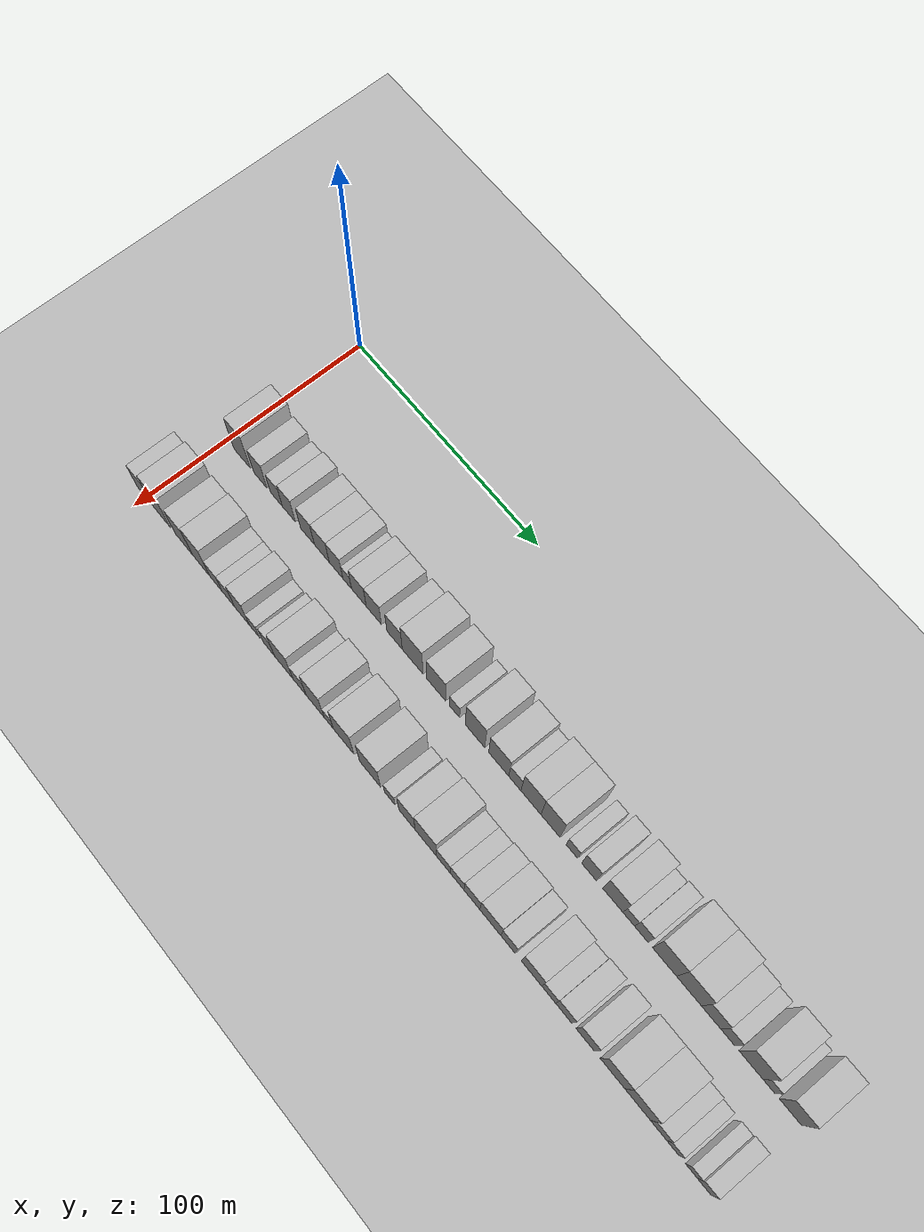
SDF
<sdf version="1.6">
 <world name="default">
  <include><name>ground_plane_1</name><uri>model://HANNAS_ground_plane</uri></include>
  <include>
   <name>ground_plane_2</name>
   <uri>model://HANNAS_ground_plane</uri>
   <pose>100 0 0  0 0 0</pose>
  </include>
  <model name="building_31">
   <static>1</static>
   <pose>50.0000 9.4016 0 0.000000 0.000000 0.000000</pose>
   <link name="link">
    <pose>0 0 12.00 0 0 0</pose>
    <collision name="collision"><geometry><box><size>20.0000 9.6106 24.0000</size></box></geometry></collision>
    <visual name="visual">
     <cast_shadows>0</cast_shadows>
     <geometry><box><size>20.0000 9.6106 24.0000</size></box></geometry>
     <material>
      <script>
       <uri>model://HANNAS_wall/materials/scripts</uri>
       <uri>model://HANNAS_wall/materials/textures</uri>
       <name>vrc/HANNAS_wall</name>
      </script>
     </material>
    </visual>
   </link>
  </model>
  <model name="building_32">
   <static>1</static>
   <pose>50.0000 20.1189 0 0.000000 0.000000 0.000000</pose>
   <link name="link">
    <pose>0 0 9.00 0 0 0</pose>
    <collision name="collision"><geometry><box><size>20.0000 7.8241 18.0000</size></box></geometry></collision>
    <visual name="visual">
     <cast_shadows>0</cast_shadows>
     <geometry><box><size>20.0000 7.8241 18.0000</size></box></geometry>
     <material>
      <script>
       <uri>model://HANNAS_wall/materials/scripts</uri>
       <uri>model://HANNAS_wall/materials/textures</uri>
       <name>vrc/HANNAS_wall</name>
      </script>
     </material>
    </visual>
   </link>
  </model>
  <model name="building_33">
   <static>1</static>
   <pose>50.0000 29.5173 0 0.000000 0.000000 0.000000</pose>
   <link name="link">
    <pose>0 0 7.50 0 0 0</pose>
    <collision name="collision"><geometry><box><size>20.0000 6.9727 15.0000</size></box></geometry></collision>
    <visual name="visual">
     <cast_shadows>0</cast_shadows>
     <geometry><box><size>20.0000 6.9727 15.0000</size></box></geometry>
     <material>
      <script>
       <uri>model://HANNAS_wall/materials/scripts</uri>
       <uri>model://HANNAS_wall/materials/textures</uri>
       <name>vrc/HANNAS_wall</name>
      </script>
     </material>
    </visual>
   </link>
  </model>
  <model name="building_34">
   <static>1</static>
   <pose>50.0000 36.7417 0 0.000000 0.000000 0.000000</pose>
   <link name="link">
    <pose>0 0 9.00 0 0 0</pose>
    <collision name="collision"><geometry><box><size>20.0000 7.4761 18.0000</size></box></geometry></collision>
    <visual name="visual">
     <cast_shadows>0</cast_shadows>
     <geometry><box><size>20.0000 7.4761 18.0000</size></box></geometry>
     <material>
      <script>
       <uri>model://HANNAS_wall/materials/scripts</uri>
       <uri>model://HANNAS_wall/materials/textures</uri>
       <name>vrc/HANNAS_wall</name>
      </script>
     </material>
    </visual>
   </link>
  </model>
  <model name="building_35">
   <static>1</static>
   <pose>50.0000 47.4187 0 0.000000 0.000000 0.000000</pose>
   <link name="link">
    <pose>0 0 9.00 0 0 0</pose>
    <collision name="collision"><geometry><box><size>20.0000 7.8779 18.0000</size></box></geometry></collision>
    <visual name="visual">
     <cast_shadows>0</cast_shadows>
     <geometry><box><size>20.0000 7.8779 18.0000</size></box></geometry>
     <material>
      <script>
       <uri>model://HANNAS_wall/materials/scripts</uri>
       <uri>model://HANNAS_wall/materials/textures</uri>
       <name>vrc/HANNAS_wall</name>
      </script>
     </material>
    </visual>
   </link>
  </model>
  <model name="building_36">
   <static>1</static>
   <pose>50.0000 55.5875 0 0.000000 0.000000 0.000000</pose>
   <link name="link">
    <pose>0 0 9.00 0 0 0</pose>
    <collision name="collision"><geometry><box><size>20.0000 8.4597 18.0000</size></box></geometry></collision>
    <visual name="visual">
     <cast_shadows>0</cast_shadows>
     <geometry><box><size>20.0000 8.4597 18.0000</size></box></geometry>
     <material>
      <script>
       <uri>model://HANNAS_wall/materials/scripts</uri>
       <uri>model://HANNAS_wall/materials/textures</uri>
       <name>vrc/HANNAS_wall</name>
      </script>
     </material>
    </visual>
   </link>
  </model>
  <model name="building_37">
   <static>1</static>
   <pose>50.0000 63.6244 0 0.000000 0.000000 0.000000</pose>
   <link name="link">
    <pose>0 0 9.00 0 0 0</pose>
    <collision name="collision"><geometry><box><size>20.0000 7.6142 18.0000</size></box></geometry></collision>
    <visual name="visual">
     <cast_shadows>0</cast_shadows>
     <geometry><box><size>20.0000 7.6142 18.0000</size></box></geometry>
     <material>
      <script>
       <uri>model://HANNAS_wall/materials/scripts</uri>
       <uri>model://HANNAS_wall/materials/textures</uri>
       <name>vrc/HANNAS_wall</name>
      </script>
     </material>
    </visual>
   </link>
  </model>
  <model name="building_38">
   <static>1</static>
   <pose>50.0000 69.8518 0 0.000000 0.000000 0.000000</pose>
   <link name="link">
    <pose>0 0 6.00 0 0 0</pose>
    <collision name="collision"><geometry><box><size>20.0000 4.8407 12.0000</size></box></geometry></collision>
    <visual name="visual">
     <cast_shadows>0</cast_shadows>
     <geometry><box><size>20.0000 4.8407 12.0000</size></box></geometry>
     <material>
      <script>
       <uri>model://HANNAS_wall/materials/scripts</uri>
       <uri>model://HANNAS_wall/materials/textures</uri>
       <name>vrc/HANNAS_wall</name>
      </script>
     </material>
    </visual>
   </link>
  </model>
  <model name="building_39">
   <static>1</static>
   <pose>50.0000 76.3494 0 0.000000 0.000000 0.000000</pose>
   <link name="link">
    <pose>0 0 9.00 0 0 0</pose>
    <collision name="collision"><geometry><box><size>20.0000 8.1544 18.0000</size></box></geometry></collision>
    <visual name="visual">
     <cast_shadows>0</cast_shadows>
     <geometry><box><size>20.0000 8.1544 18.0000</size></box></geometry>
     <material>
      <script>
       <uri>model://HANNAS_wall/materials/scripts</uri>
       <uri>model://HANNAS_wall/materials/textures</uri>
       <name>vrc/HANNAS_wall</name>
      </script>
     </material>
    </visual>
   </link>
  </model>
  <model name="building_40">
   <static>1</static>
   <pose>50.0000 84.6079 0 0.000000 0.000000 0.000000</pose>
   <link name="link">
    <pose>0 0 9.00 0 0 0</pose>
    <collision name="collision"><geometry><box><size>20.0000 8.3627 18.0000</size></box></geometry></collision>
    <visual name="visual">
     <cast_shadows>0</cast_shadows>
     <geometry><box><size>20.0000 8.3627 18.0000</size></box></geometry>
     <material>
      <script>
       <uri>model://HANNAS_wall/materials/scripts</uri>
       <uri>model://HANNAS_wall/materials/textures</uri>
       <name>vrc/HANNAS_wall</name>
      </script>
     </material>
    </visual>
   </link>
  </model>
  <model name="building_41">
   <static>1</static>
   <pose>50.0000 95.9623 0 0.000000 0.000000 0.000000</pose>
   <link name="link">
    <pose>0 0 9.00 0 0 0</pose>
    <collision name="collision"><geometry><box><size>20.0000 8.3461 18.0000</size></box></geometry></collision>
    <visual name="visual">
     <cast_shadows>0</cast_shadows>
     <geometry><box><size>20.0000 8.3461 18.0000</size></box></geometry>
     <material>
      <script>
       <uri>model://HANNAS_wall/materials/scripts</uri>
       <uri>model://HANNAS_wall/materials/textures</uri>
       <name>vrc/HANNAS_wall</name>
      </script>
     </material>
    </visual>
   </link>
  </model>
  <model name="building_42">
   <static>1</static>
   <pose>50.0000 105.7547 0 0.000000 0.000000 0.000000</pose>
   <link name="link">
    <pose>0 0 12.00 0 0 0</pose>
    <collision name="collision"><geometry><box><size>20.0000 11.2388 24.0000</size></box></geometry></collision>
    <visual name="visual">
     <cast_shadows>0</cast_shadows>
     <geometry><box><size>20.0000 11.2388 24.0000</size></box></geometry>
     <material>
      <script>
       <uri>model://HANNAS_wall/materials/scripts</uri>
       <uri>model://HANNAS_wall/materials/textures</uri>
       <name>vrc/HANNAS_wall</name>
      </script>
     </material>
    </visual>
   </link>
  </model>
  <model name="building_43">
   <static>1</static>
   <pose>50.0000 118.3998 0 0.000000 0.000000 0.000000</pose>
   <link name="link">
    <pose>0 0 10.50 0 0 0</pose>
    <collision name="collision"><geometry><box><size>20.0000 10.0513 21.0000</size></box></geometry></collision>
    <visual name="visual">
     <cast_shadows>0</cast_shadows>
     <geometry><box><size>20.0000 10.0513 21.0000</size></box></geometry>
     <material>
      <script>
       <uri>model://HANNAS_wall/materials/scripts</uri>
       <uri>model://HANNAS_wall/materials/textures</uri>
       <name>vrc/HANNAS_wall</name>
      </script>
     </material>
    </visual>
   </link>
  </model>
  <model name="building_44">
   <static>1</static>
   <pose>50.0000 128.1197 0 0.000000 0.000000 0.000000</pose>
   <link name="link">
    <pose>0 0 6.00 0 0 0</pose>
    <collision name="collision"><geometry><box><size>20.0000 5.3886 12.0000</size></box></geometry></collision>
    <visual name="visual">
     <cast_shadows>0</cast_shadows>
     <geometry><box><size>20.0000 5.3886 12.0000</size></box></geometry>
     <material>
      <script>
       <uri>model://HANNAS_wall/materials/scripts</uri>
       <uri>model://HANNAS_wall/materials/textures</uri>
       <name>vrc/HANNAS_wall</name>
      </script>
     </material>
    </visual>
   </link>
  </model>
  <model name="building_45">
   <static>1</static>
   <pose>50.0000 138.9003 0 0.000000 0.000000 0.000000</pose>
   <link name="link">
    <pose>0 0 12.00 0 0 0</pose>
    <collision name="collision"><geometry><box><size>20.0000 10.1726 24.0000</size></box></geometry></collision>
    <visual name="visual">
     <cast_shadows>0</cast_shadows>
     <geometry><box><size>20.0000 10.1726 24.0000</size></box></geometry>
     <material>
      <script>
       <uri>model://HANNAS_wall/materials/scripts</uri>
       <uri>model://HANNAS_wall/materials/textures</uri>
       <name>vrc/HANNAS_wall</name>
      </script>
     </material>
    </visual>
   </link>
  </model>
  <model name="building_46">
   <static>1</static>
   <pose>50.0000 151.1847 0 0.000000 0.000000 0.000000</pose>
   <link name="link">
    <pose>0 0 10.50 0 0 0</pose>
    <collision name="collision"><geometry><box><size>20.0000 10.3962 21.0000</size></box></geometry></collision>
    <visual name="visual">
     <cast_shadows>0</cast_shadows>
     <geometry><box><size>20.0000 10.3962 21.0000</size></box></geometry>
     <material>
      <script>
       <uri>model://HANNAS_wall/materials/scripts</uri>
       <uri>model://HANNAS_wall/materials/textures</uri>
       <name>vrc/HANNAS_wall</name>
      </script>
     </material>
    </visual>
   </link>
  </model>
  <model name="building_47">
   <static>1</static>
   <pose>50.0000 159.4917 0 0.000000 0.000000 0.000000</pose>
   <link name="link">
    <pose>0 0 7.50 0 0 0</pose>
    <collision name="collision"><geometry><box><size>20.0000 6.2178 15.0000</size></box></geometry></collision>
    <visual name="visual">
     <cast_shadows>0</cast_shadows>
     <geometry><box><size>20.0000 6.2178 15.0000</size></box></geometry>
     <material>
      <script>
       <uri>model://HANNAS_wall/materials/scripts</uri>
       <uri>model://HANNAS_wall/materials/textures</uri>
       <name>vrc/HANNAS_wall</name>
      </script>
     </material>
    </visual>
   </link>
  </model>
  <model name="building_48">
   <static>1</static>
   <pose>50.0000 167.7055 0 0.000000 0.000000 0.000000</pose>
   <link name="link">
    <pose>0 0 12.00 0 0 0</pose>
    <collision name="collision"><geometry><box><size>20.0000 10.2099 24.0000</size></box></geometry></collision>
    <visual name="visual">
     <cast_shadows>0</cast_shadows>
     <geometry><box><size>20.0000 10.2099 24.0000</size></box></geometry>
     <material>
      <script>
       <uri>model://HANNAS_wall/materials/scripts</uri>
       <uri>model://HANNAS_wall/materials/textures</uri>
       <name>vrc/HANNAS_wall</name>
      </script>
     </material>
    </visual>
   </link>
  </model>
  <model name="building_49">
   <static>1</static>
   <pose>50.0000 177.6458 0 0.000000 0.000000 0.000000</pose>
   <link name="link">
    <pose>0 0 12.00 0 0 0</pose>
    <collision name="collision"><geometry><box><size>20.0000 9.6705 24.0000</size></box></geometry></collision>
    <visual name="visual">
     <cast_shadows>0</cast_shadows>
     <geometry><box><size>20.0000 9.6705 24.0000</size></box></geometry>
     <material>
      <script>
       <uri>model://HANNAS_wall/materials/scripts</uri>
       <uri>model://HANNAS_wall/materials/textures</uri>
       <name>vrc/HANNAS_wall</name>
      </script>
     </material>
    </visual>
   </link>
  </model>
  <model name="building_50">
   <static>1</static>
   <pose>50.0000 188.3380 0 0.000000 0.000000 0.000000</pose>
   <link name="link">
    <pose>0 0 6.00 0 0 0</pose>
    <collision name="collision"><geometry><box><size>20.0000 5.7140 12.0000</size></box></geometry></collision>
    <visual name="visual">
     <cast_shadows>0</cast_shadows>
     <geometry><box><size>20.0000 5.7140 12.0000</size></box></geometry>
     <material>
      <script>
       <uri>model://HANNAS_wall/materials/scripts</uri>
       <uri>model://HANNAS_wall/materials/textures</uri>
       <name>vrc/HANNAS_wall</name>
      </script>
     </material>
    </visual>
   </link>
  </model>
  <model name="building_51">
   <static>1</static>
   <pose>50.0000 196.8717 0 0.000000 0.000000 0.000000</pose>
   <link name="link">
    <pose>0 0 9.00 0 0 0</pose>
    <collision name="collision"><geometry><box><size>20.0000 7.3533 18.0000</size></box></geometry></collision>
    <visual name="visual">
     <cast_shadows>0</cast_shadows>
     <geometry><box><size>20.0000 7.3533 18.0000</size></box></geometry>
     <material>
      <script>
       <uri>model://HANNAS_wall/materials/scripts</uri>
       <uri>model://HANNAS_wall/materials/textures</uri>
       <name>vrc/HANNAS_wall</name>
      </script>
     </material>
    </visual>
   </link>
  </model>
  <model name="building_52">
   <static>1</static>
   <pose>50.0000 208.5047 0 0.000000 0.000000 0.000000</pose>
   <link name="link">
    <pose>0 0 10.50 0 0 0</pose>
    <collision name="collision"><geometry><box><size>20.0000 9.9125 21.0000</size></box></geometry></collision>
    <visual name="visual">
     <cast_shadows>0</cast_shadows>
     <geometry><box><size>20.0000 9.9125 21.0000</size></box></geometry>
     <material>
      <script>
       <uri>model://HANNAS_wall/materials/scripts</uri>
       <uri>model://HANNAS_wall/materials/textures</uri>
       <name>vrc/HANNAS_wall</name>
      </script>
     </material>
    </visual>
   </link>
  </model>
  <model name="building_53">
   <static>1</static>
   <pose>50.0000 216.2684 0 0.000000 0.000000 0.000000</pose>
   <link name="link">
    <pose>0 0 6.00 0 0 0</pose>
    <collision name="collision"><geometry><box><size>20.0000 5.6150 12.0000</size></box></geometry></collision>
    <visual name="visual">
     <cast_shadows>0</cast_shadows>
     <geometry><box><size>20.0000 5.6150 12.0000</size></box></geometry>
     <material>
      <script>
       <uri>model://HANNAS_wall/materials/scripts</uri>
       <uri>model://HANNAS_wall/materials/textures</uri>
       <name>vrc/HANNAS_wall</name>
      </script>
     </material>
    </visual>
   </link>
  </model>
  <model name="building_54">
   <static>1</static>
   <pose>50.0000 222.3416 0 0.000000 0.000000 0.000000</pose>
   <link name="link">
    <pose>0 0 7.50 0 0 0</pose>
    <collision name="collision"><geometry><box><size>20.0000 6.5314 15.0000</size></box></geometry></collision>
    <visual name="visual">
     <cast_shadows>0</cast_shadows>
     <geometry><box><size>20.0000 6.5314 15.0000</size></box></geometry>
     <material>
      <script>
       <uri>model://HANNAS_wall/materials/scripts</uri>
       <uri>model://HANNAS_wall/materials/textures</uri>
       <name>vrc/HANNAS_wall</name>
      </script>
     </material>
    </visual>
   </link>
  </model>
  <model name="building_55">
   <static>1</static>
   <pose>50.0000 233.3606 0 0.000000 0.000000 0.000000</pose>
   <link name="link">
    <pose>0 0 12.00 0 0 0</pose>
    <collision name="collision"><geometry><box><size>20.0000 11.5067 24.0000</size></box></geometry></collision>
    <visual name="visual">
     <cast_shadows>0</cast_shadows>
     <geometry><box><size>20.0000 11.5067 24.0000</size></box></geometry>
     <material>
      <script>
       <uri>model://HANNAS_wall/materials/scripts</uri>
       <uri>model://HANNAS_wall/materials/textures</uri>
       <name>vrc/HANNAS_wall</name>
      </script>
     </material>
    </visual>
   </link>
  </model>
  <model name="building_56">
   <static>1</static>
   <pose>50.0000 244.9944 0 0.000000 0.000000 0.000000</pose>
   <link name="link">
    <pose>0 0 12.00 0 0 0</pose>
    <collision name="collision"><geometry><box><size>20.0000 11.7608 24.0000</size></box></geometry></collision>
    <visual name="visual">
     <cast_shadows>0</cast_shadows>
     <geometry><box><size>20.0000 11.7608 24.0000</size></box></geometry>
     <material>
      <script>
       <uri>model://HANNAS_wall/materials/scripts</uri>
       <uri>model://HANNAS_wall/materials/textures</uri>
       <name>vrc/HANNAS_wall</name>
      </script>
     </material>
    </visual>
   </link>
  </model>
  <model name="building_57">
   <static>1</static>
   <pose>50.0000 255.3489 0 0.000000 0.000000 0.000000</pose>
   <link name="link">
    <pose>0 0 9.00 0 0 0</pose>
    <collision name="collision"><geometry><box><size>20.0000 8.9483 18.0000</size></box></geometry></collision>
    <visual name="visual">
     <cast_shadows>0</cast_shadows>
     <geometry><box><size>20.0000 8.9483 18.0000</size></box></geometry>
     <material>
      <script>
       <uri>model://HANNAS_wall/materials/scripts</uri>
       <uri>model://HANNAS_wall/materials/textures</uri>
       <name>vrc/HANNAS_wall</name>
      </script>
     </material>
    </visual>
   </link>
  </model>
  <model name="building_58">
   <static>1</static>
   <pose>50.0000 262.9686 0 0.000000 0.000000 0.000000</pose>
   <link name="link">
    <pose>0 0 7.50 0 0 0</pose>
    <collision name="collision"><geometry><box><size>20.0000 6.2910 15.0000</size></box></geometry></collision>
    <visual name="visual">
     <cast_shadows>0</cast_shadows>
     <geometry><box><size>20.0000 6.2910 15.0000</size></box></geometry>
     <material>
      <script>
       <uri>model://HANNAS_wall/materials/scripts</uri>
       <uri>model://HANNAS_wall/materials/textures</uri>
       <name>vrc/HANNAS_wall</name>
      </script>
     </material>
    </visual>
   </link>
  </model>
  <model name="building_59">
   <static>1</static>
   <pose>50.0000 273.6229 0 0.000000 0.000000 0.000000</pose>
   <link name="link">
    <pose>0 0 12.00 0 0 0</pose>
    <collision name="collision"><geometry><box><size>20.0000 11.0178 24.0000</size></box></geometry></collision>
    <visual name="visual">
     <cast_shadows>0</cast_shadows>
     <geometry><box><size>20.0000 11.0178 24.0000</size></box></geometry>
     <material>
      <script>
       <uri>model://HANNAS_wall/materials/scripts</uri>
       <uri>model://HANNAS_wall/materials/textures</uri>
       <name>vrc/HANNAS_wall</name>
      </script>
     </material>
    </visual>
   </link>
  </model>
  <model name="building_60">
   <static>1</static>
   <pose>50.0000 281.7626 0 0.000000 0.000000 0.000000</pose>
   <link name="link">
    <pose>0 0 6.00 0 0 0</pose>
    <collision name="collision"><geometry><box><size>20.0000 5.2615 12.0000</size></box></geometry></collision>
    <visual name="visual">
     <cast_shadows>0</cast_shadows>
     <geometry><box><size>20.0000 5.2615 12.0000</size></box></geometry>
     <material>
      <script>
       <uri>model://HANNAS_wall/materials/scripts</uri>
       <uri>model://HANNAS_wall/materials/textures</uri>
       <name>vrc/HANNAS_wall</name>
      </script>
     </material>
    </visual>
   </link>
  </model>
  <model name="building_61">
   <static>1</static>
   <pose>50.0000 291.4034 0 0.000000 0.000000 0.000000</pose>
   <link name="link">
    <pose>0 0 10.50 0 0 0</pose>
    <collision name="collision"><geometry><box><size>20.0000 10.0201 21.0000</size></box></geometry></collision>
    <visual name="visual">
     <cast_shadows>0</cast_shadows>
     <geometry><box><size>20.0000 10.0201 21.0000</size></box></geometry>
     <material>
      <script>
       <uri>model://HANNAS_wall/materials/scripts</uri>
       <uri>model://HANNAS_wall/materials/textures</uri>
       <name>vrc/HANNAS_wall</name>
      </script>
     </material>
    </visual>
   </link>
  </model>
  <model name="building_97">
   <static>1</static>
   <pose>85.0000 -0.6784 0 0.000000 0.000000 0.000000</pose>
   <link name="link">
    <pose>0 0 9.00 0 0 0</pose>
    <collision name="collision"><geometry><box><size>20.0000 8.5508 18.0000</size></box></geometry></collision>
    <visual name="visual">
     <cast_shadows>0</cast_shadows>
     <geometry><box><size>20.0000 8.5508 18.0000</size></box></geometry>
     <material>
      <script>
       <uri>model://HANNAS_wall/materials/scripts</uri>
       <uri>model://HANNAS_wall/materials/textures</uri>
       <name>vrc/HANNAS_wall</name>
      </script>
     </material>
    </visual>
   </link>
  </model>
  <model name="building_98">
   <static>1</static>
   <pose>85.0000 9.1576 0 0.000000 0.000000 0.000000</pose>
   <link name="link">
    <pose>0 0 12.00 0 0 0</pose>
    <collision name="collision"><geometry><box><size>20.0000 11.1212 24.0000</size></box></geometry></collision>
    <visual name="visual">
     <cast_shadows>0</cast_shadows>
     <geometry><box><size>20.0000 11.1212 24.0000</size></box></geometry>
     <material>
      <script>
       <uri>model://HANNAS_wall/materials/scripts</uri>
       <uri>model://HANNAS_wall/materials/textures</uri>
       <name>vrc/HANNAS_wall</name>
      </script>
     </material>
    </visual>
   </link>
  </model>
  <model name="building_99">
   <static>1</static>
   <pose>85.0000 22.8064 0 0.000000 0.000000 0.000000</pose>
   <link name="link">
    <pose>0 0 10.50 0 0 0</pose>
    <collision name="collision"><geometry><box><size>20.0000 10.1763 21.0000</size></box></geometry></collision>
    <visual name="visual">
     <cast_shadows>0</cast_shadows>
     <geometry><box><size>20.0000 10.1763 21.0000</size></box></geometry>
     <material>
      <script>
       <uri>model://HANNAS_wall/materials/scripts</uri>
       <uri>model://HANNAS_wall/materials/textures</uri>
       <name>vrc/HANNAS_wall</name>
      </script>
     </material>
    </visual>
   </link>
  </model>
  <model name="building_100">
   <static>1</static>
   <pose>85.0000 33.0621 0 0.000000 0.000000 0.000000</pose>
   <link name="link">
    <pose>0 0 12.00 0 0 0</pose>
    <collision name="collision"><geometry><box><size>20.0000 10.3352 24.0000</size></box></geometry></collision>
    <visual name="visual">
     <cast_shadows>0</cast_shadows>
     <geometry><box><size>20.0000 10.3352 24.0000</size></box></geometry>
     <material>
      <script>
       <uri>model://HANNAS_wall/materials/scripts</uri>
       <uri>model://HANNAS_wall/materials/textures</uri>
       <name>vrc/HANNAS_wall</name>
      </script>
     </material>
    </visual>
   </link>
  </model>
  <model name="building_101">
   <static>1</static>
   <pose>85.0000 41.7088 0 0.000000 0.000000 0.000000</pose>
   <link name="link">
    <pose>0 0 7.50 0 0 0</pose>
    <collision name="collision"><geometry><box><size>20.0000 6.9582 15.0000</size></box></geometry></collision>
    <visual name="visual">
     <cast_shadows>0</cast_shadows>
     <geometry><box><size>20.0000 6.9582 15.0000</size></box></geometry>
     <material>
      <script>
       <uri>model://HANNAS_wall/materials/scripts</uri>
       <uri>model://HANNAS_wall/materials/textures</uri>
       <name>vrc/HANNAS_wall</name>
      </script>
     </material>
    </visual>
   </link>
  </model>
  <model name="building_102">
   <static>1</static>
   <pose>85.0000 48.8190 0 0.000000 0.000000 0.000000</pose>
   <link name="link">
    <pose>0 0 7.50 0 0 0</pose>
    <collision name="collision"><geometry><box><size>20.0000 7.2622 15.0000</size></box></geometry></collision>
    <visual name="visual">
     <cast_shadows>0</cast_shadows>
     <geometry><box><size>20.0000 7.2622 15.0000</size></box></geometry>
     <material>
      <script>
       <uri>model://HANNAS_wall/materials/scripts</uri>
       <uri>model://HANNAS_wall/materials/textures</uri>
       <name>vrc/HANNAS_wall</name>
      </script>
     </material>
    </visual>
   </link>
  </model>
  <model name="building_103">
   <static>1</static>
   <pose>85.0000 56.6655 0 0.000000 0.000000 0.000000</pose>
   <link name="link">
    <pose>0 0 10.50 0 0 0</pose>
    <collision name="collision"><geometry><box><size>20.0000 8.4308 21.0000</size></box></geometry></collision>
    <visual name="visual">
     <cast_shadows>0</cast_shadows>
     <geometry><box><size>20.0000 8.4308 21.0000</size></box></geometry>
     <material>
      <script>
       <uri>model://HANNAS_wall/materials/scripts</uri>
       <uri>model://HANNAS_wall/materials/textures</uri>
       <name>vrc/HANNAS_wall</name>
      </script>
     </material>
    </visual>
   </link>
  </model>
  <model name="building_104">
   <static>1</static>
   <pose>85.0000 63.7536 0 0.000000 0.000000 0.000000</pose>
   <link name="link">
    <pose>0 0 6.00 0 0 0</pose>
    <collision name="collision"><geometry><box><size>20.0000 5.7455 12.0000</size></box></geometry></collision>
    <visual name="visual">
     <cast_shadows>0</cast_shadows>
     <geometry><box><size>20.0000 5.7455 12.0000</size></box></geometry>
     <material>
      <script>
       <uri>model://HANNAS_wall/materials/scripts</uri>
       <uri>model://HANNAS_wall/materials/textures</uri>
       <name>vrc/HANNAS_wall</name>
      </script>
     </material>
    </visual>
   </link>
  </model>
  <model name="building_105">
   <static>1</static>
   <pose>85.0000 71.8450 0 0.000000 0.000000 0.000000</pose>
   <link name="link">
    <pose>0 0 7.50 0 0 0</pose>
    <collision name="collision"><geometry><box><size>20.0000 6.4372 15.0000</size></box></geometry></collision>
    <visual name="visual">
     <cast_shadows>0</cast_shadows>
     <geometry><box><size>20.0000 6.4372 15.0000</size></box></geometry>
     <material>
      <script>
       <uri>model://HANNAS_wall/materials/scripts</uri>
       <uri>model://HANNAS_wall/materials/textures</uri>
       <name>vrc/HANNAS_wall</name>
      </script>
     </material>
    </visual>
   </link>
  </model>
  <model name="building_106">
   <static>1</static>
   <pose>85.0000 80.2032 0 0.000000 0.000000 0.000000</pose>
   <link name="link">
    <pose>0 0 12.00 0 0 0</pose>
    <collision name="collision"><geometry><box><size>20.0000 10.2793 24.0000</size></box></geometry></collision>
    <visual name="visual">
     <cast_shadows>0</cast_shadows>
     <geometry><box><size>20.0000 10.2793 24.0000</size></box></geometry>
     <material>
      <script>
       <uri>model://HANNAS_wall/materials/scripts</uri>
       <uri>model://HANNAS_wall/materials/textures</uri>
       <name>vrc/HANNAS_wall</name>
      </script>
     </material>
    </visual>
   </link>
  </model>
  <model name="building_107">
   <static>1</static>
   <pose>85.0000 88.9788 0 0.000000 0.000000 0.000000</pose>
   <link name="link">
    <pose>0 0 7.50 0 0 0</pose>
    <collision name="collision"><geometry><box><size>20.0000 7.2718 15.0000</size></box></geometry></collision>
    <visual name="visual">
     <cast_shadows>0</cast_shadows>
     <geometry><box><size>20.0000 7.2718 15.0000</size></box></geometry>
     <material>
      <script>
       <uri>model://HANNAS_wall/materials/scripts</uri>
       <uri>model://HANNAS_wall/materials/textures</uri>
       <name>vrc/HANNAS_wall</name>
      </script>
     </material>
    </visual>
   </link>
  </model>
  <model name="building_108">
   <static>1</static>
   <pose>85.0000 97.5811 0 0.000000 0.000000 0.000000</pose>
   <link name="link">
    <pose>0 0 12.00 0 0 0</pose>
    <collision name="collision"><geometry><box><size>20.0000 9.9329 24.0000</size></box></geometry></collision>
    <visual name="visual">
     <cast_shadows>0</cast_shadows>
     <geometry><box><size>20.0000 9.9329 24.0000</size></box></geometry>
     <material>
      <script>
       <uri>model://HANNAS_wall/materials/scripts</uri>
       <uri>model://HANNAS_wall/materials/textures</uri>
       <name>vrc/HANNAS_wall</name>
      </script>
     </material>
    </visual>
   </link>
  </model>
  <model name="building_109">
   <static>1</static>
   <pose>85.0000 105.0514 0 0.000000 0.000000 0.000000</pose>
   <link name="link">
    <pose>0 0 6.00 0 0 0</pose>
    <collision name="collision"><geometry><box><size>20.0000 5.0077 12.0000</size></box></geometry></collision>
    <visual name="visual">
     <cast_shadows>0</cast_shadows>
     <geometry><box><size>20.0000 5.0077 12.0000</size></box></geometry>
     <material>
      <script>
       <uri>model://HANNAS_wall/materials/scripts</uri>
       <uri>model://HANNAS_wall/materials/textures</uri>
       <name>vrc/HANNAS_wall</name>
      </script>
     </material>
    </visual>
   </link>
  </model>
  <model name="building_110">
   <static>1</static>
   <pose>85.0000 113.0807 0 0.000000 0.000000 0.000000</pose>
   <link name="link">
    <pose>0 0 12.00 0 0 0</pose>
    <collision name="collision"><geometry><box><size>20.0000 11.0508 24.0000</size></box></geometry></collision>
    <visual name="visual">
     <cast_shadows>0</cast_shadows>
     <geometry><box><size>20.0000 11.0508 24.0000</size></box></geometry>
     <material>
      <script>
       <uri>model://HANNAS_wall/materials/scripts</uri>
       <uri>model://HANNAS_wall/materials/textures</uri>
       <name>vrc/HANNAS_wall</name>
      </script>
     </material>
    </visual>
   </link>
  </model>
  <model name="building_111">
   <static>1</static>
   <pose>85.0000 127.1716 0 0.000000 0.000000 0.000000</pose>
   <link name="link">
    <pose>0 0 12.00 0 0 0</pose>
    <collision name="collision"><geometry><box><size>20.0000 11.1311 24.0000</size></box></geometry></collision>
    <visual name="visual">
     <cast_shadows>0</cast_shadows>
     <geometry><box><size>20.0000 11.1311 24.0000</size></box></geometry>
     <material>
      <script>
       <uri>model://HANNAS_wall/materials/scripts</uri>
       <uri>model://HANNAS_wall/materials/textures</uri>
       <name>vrc/HANNAS_wall</name>
      </script>
     </material>
    </visual>
   </link>
  </model>
  <model name="building_112">
   <static>1</static>
   <pose>85.0000 137.5514 0 0.000000 0.000000 0.000000</pose>
   <link name="link">
    <pose>0 0 6.00 0 0 0</pose>
    <collision name="collision"><geometry><box><size>20.0000 5.6285 12.0000</size></box></geometry></collision>
    <visual name="visual">
     <cast_shadows>0</cast_shadows>
     <geometry><box><size>20.0000 5.6285 12.0000</size></box></geometry>
     <material>
      <script>
       <uri>model://HANNAS_wall/materials/scripts</uri>
       <uri>model://HANNAS_wall/materials/textures</uri>
       <name>vrc/HANNAS_wall</name>
      </script>
     </material>
    </visual>
   </link>
  </model>
  <model name="building_113">
   <static>1</static>
   <pose>85.0000 146.6198 0 0.000000 0.000000 0.000000</pose>
   <link name="link">
    <pose>0 0 10.50 0 0 0</pose>
    <collision name="collision"><geometry><box><size>20.0000 8.5082 21.0000</size></box></geometry></collision>
    <visual name="visual">
     <cast_shadows>0</cast_shadows>
     <geometry><box><size>20.0000 8.5082 21.0000</size></box></geometry>
     <material>
      <script>
       <uri>model://HANNAS_wall/materials/scripts</uri>
       <uri>model://HANNAS_wall/materials/textures</uri>
       <name>vrc/HANNAS_wall</name>
      </script>
     </material>
    </visual>
   </link>
  </model>
  <model name="building_114">
   <static>1</static>
   <pose>85.0000 156.4102 0 0.000000 0.000000 0.000000</pose>
   <link name="link">
    <pose>0 0 12.00 0 0 0</pose>
    <collision name="collision"><geometry><box><size>20.0000 11.0725 24.0000</size></box></geometry></collision>
    <visual name="visual">
     <cast_shadows>0</cast_shadows>
     <geometry><box><size>20.0000 11.0725 24.0000</size></box></geometry>
     <material>
      <script>
       <uri>model://HANNAS_wall/materials/scripts</uri>
       <uri>model://HANNAS_wall/materials/textures</uri>
       <name>vrc/HANNAS_wall</name>
      </script>
     </material>
    </visual>
   </link>
  </model>
  <model name="building_115">
   <static>1</static>
   <pose>85.0000 165.4673 0 0.000000 0.000000 0.000000</pose>
   <link name="link">
    <pose>0 0 7.50 0 0 0</pose>
    <collision name="collision"><geometry><box><size>20.0000 7.0419 15.0000</size></box></geometry></collision>
    <visual name="visual">
     <cast_shadows>0</cast_shadows>
     <geometry><box><size>20.0000 7.0419 15.0000</size></box></geometry>
     <material>
      <script>
       <uri>model://HANNAS_wall/materials/scripts</uri>
       <uri>model://HANNAS_wall/materials/textures</uri>
       <name>vrc/HANNAS_wall</name>
      </script>
     </material>
    </visual>
   </link>
  </model>
  <model name="building_116">
   <static>1</static>
   <pose>85.0000 172.4814 0 0.000000 0.000000 0.000000</pose>
   <link name="link">
    <pose>0 0 7.50 0 0 0</pose>
    <collision name="collision"><geometry><box><size>20.0000 6.9862 15.0000</size></box></geometry></collision>
    <visual name="visual">
     <cast_shadows>0</cast_shadows>
     <geometry><box><size>20.0000 6.9862 15.0000</size></box></geometry>
     <material>
      <script>
       <uri>model://HANNAS_wall/materials/scripts</uri>
       <uri>model://HANNAS_wall/materials/textures</uri>
       <name>vrc/HANNAS_wall</name>
      </script>
     </material>
    </visual>
   </link>
  </model>
  <model name="building_117">
   <static>1</static>
   <pose>85.0000 179.9970 0 0.000000 0.000000 0.000000</pose>
   <link name="link">
    <pose>0 0 9.00 0 0 0</pose>
    <collision name="collision"><geometry><box><size>20.0000 8.0450 18.0000</size></box></geometry></collision>
    <visual name="visual">
     <cast_shadows>0</cast_shadows>
     <geometry><box><size>20.0000 8.0450 18.0000</size></box></geometry>
     <material>
      <script>
       <uri>model://HANNAS_wall/materials/scripts</uri>
       <uri>model://HANNAS_wall/materials/textures</uri>
       <name>vrc/HANNAS_wall</name>
      </script>
     </material>
    </visual>
   </link>
  </model>
  <model name="building_118">
   <static>1</static>
   <pose>85.0000 189.2405 0 0.000000 0.000000 0.000000</pose>
   <link name="link">
    <pose>0 0 10.50 0 0 0</pose>
    <collision name="collision"><geometry><box><size>20.0000 10.4420 21.0000</size></box></geometry></collision>
    <visual name="visual">
     <cast_shadows>0</cast_shadows>
     <geometry><box><size>20.0000 10.4420 21.0000</size></box></geometry>
     <material>
      <script>
       <uri>model://HANNAS_wall/materials/scripts</uri>
       <uri>model://HANNAS_wall/materials/textures</uri>
       <name>vrc/HANNAS_wall</name>
      </script>
     </material>
    </visual>
   </link>
  </model>
  <model name="building_119">
   <static>1</static>
   <pose>85.0000 198.0699 0 0.000000 0.000000 0.000000</pose>
   <link name="link">
    <pose>0 0 9.00 0 0 0</pose>
    <collision name="collision"><geometry><box><size>20.0000 7.2166 18.0000</size></box></geometry></collision>
    <visual name="visual">
     <cast_shadows>0</cast_shadows>
     <geometry><box><size>20.0000 7.2166 18.0000</size></box></geometry>
     <material>
      <script>
       <uri>model://HANNAS_wall/materials/scripts</uri>
       <uri>model://HANNAS_wall/materials/textures</uri>
       <name>vrc/HANNAS_wall</name>
      </script>
     </material>
    </visual>
   </link>
  </model>
  <model name="building_120">
   <static>1</static>
   <pose>85.0000 209.6480 0 0.000000 0.000000 0.000000</pose>
   <link name="link">
    <pose>0 0 10.50 0 0 0</pose>
    <collision name="collision"><geometry><box><size>20.0000 9.9397 21.0000</size></box></geometry></collision>
    <visual name="visual">
     <cast_shadows>0</cast_shadows>
     <geometry><box><size>20.0000 9.9397 21.0000</size></box></geometry>
     <material>
      <script>
       <uri>model://HANNAS_wall/materials/scripts</uri>
       <uri>model://HANNAS_wall/materials/textures</uri>
       <name>vrc/HANNAS_wall</name>
      </script>
     </material>
    </visual>
   </link>
  </model>
  <model name="building_121">
   <static>1</static>
   <pose>85.0000 217.9612 0 0.000000 0.000000 0.000000</pose>
   <link name="link">
    <pose>0 0 7.50 0 0 0</pose>
    <collision name="collision"><geometry><box><size>20.0000 6.6866 15.0000</size></box></geometry></collision>
    <visual name="visual">
     <cast_shadows>0</cast_shadows>
     <geometry><box><size>20.0000 6.6866 15.0000</size></box></geometry>
     <material>
      <script>
       <uri>model://HANNAS_wall/materials/scripts</uri>
       <uri>model://HANNAS_wall/materials/textures</uri>
       <name>vrc/HANNAS_wall</name>
      </script>
     </material>
    </visual>
   </link>
  </model>
  <model name="building_122">
   <static>1</static>
   <pose>85.0000 225.2468 0 0.000000 0.000000 0.000000</pose>
   <link name="link">
    <pose>0 0 9.00 0 0 0</pose>
    <collision name="collision"><geometry><box><size>20.0000 7.8847 18.0000</size></box></geometry></collision>
    <visual name="visual">
     <cast_shadows>0</cast_shadows>
     <geometry><box><size>20.0000 7.8847 18.0000</size></box></geometry>
     <material>
      <script>
       <uri>model://HANNAS_wall/materials/scripts</uri>
       <uri>model://HANNAS_wall/materials/textures</uri>
       <name>vrc/HANNAS_wall</name>
      </script>
     </material>
    </visual>
   </link>
  </model>
  <model name="building_123">
   <static>1</static>
   <pose>85.0000 235.4639 0 0.000000 0.000000 0.000000</pose>
   <link name="link">
    <pose>0 0 10.50 0 0 0</pose>
    <collision name="collision"><geometry><box><size>20.0000 8.5497 21.0000</size></box></geometry></collision>
    <visual name="visual">
     <cast_shadows>0</cast_shadows>
     <geometry><box><size>20.0000 8.5497 21.0000</size></box></geometry>
     <material>
      <script>
       <uri>model://HANNAS_wall/materials/scripts</uri>
       <uri>model://HANNAS_wall/materials/textures</uri>
       <name>vrc/HANNAS_wall</name>
      </script>
     </material>
    </visual>
   </link>
  </model>
  <model name="building_124">
   <static>1</static>
   <pose>85.0000 248.4697 0 0.000000 0.000000 0.000000</pose>
   <link name="link">
    <pose>0 0 12.00 0 0 0</pose>
    <collision name="collision"><geometry><box><size>20.0000 11.4617 24.0000</size></box></geometry></collision>
    <visual name="visual">
     <cast_shadows>0</cast_shadows>
     <geometry><box><size>20.0000 11.4617 24.0000</size></box></geometry>
     <material>
      <script>
       <uri>model://HANNAS_wall/materials/scripts</uri>
       <uri>model://HANNAS_wall/materials/textures</uri>
       <name>vrc/HANNAS_wall</name>
      </script>
     </material>
    </visual>
   </link>
  </model>
  <model name="building_125">
   <static>1</static>
   <pose>85.0000 260.1770 0 0.000000 0.000000 0.000000</pose>
   <link name="link">
    <pose>0 0 12.00 0 0 0</pose>
    <collision name="collision"><geometry><box><size>20.0000 11.9528 24.0000</size></box></geometry></collision>
    <visual name="visual">
     <cast_shadows>0</cast_shadows>
     <geometry><box><size>20.0000 11.9528 24.0000</size></box></geometry>
     <material>
      <script>
       <uri>model://HANNAS_wall/materials/scripts</uri>
       <uri>model://HANNAS_wall/materials/textures</uri>
       <name>vrc/HANNAS_wall</name>
      </script>
     </material>
    </visual>
   </link>
  </model>
  <model name="building_126">
   <static>1</static>
   <pose>85.0000 269.8732 0 0.000000 0.000000 0.000000</pose>
   <link name="link">
    <pose>0 0 7.50 0 0 0</pose>
    <collision name="collision"><geometry><box><size>20.0000 7.4397 15.0000</size></box></geometry></collision>
    <visual name="visual">
     <cast_shadows>0</cast_shadows>
     <geometry><box><size>20.0000 7.4397 15.0000</size></box></geometry>
     <material>
      <script>
       <uri>model://HANNAS_wall/materials/scripts</uri>
       <uri>model://HANNAS_wall/materials/textures</uri>
       <name>vrc/HANNAS_wall</name>
      </script>
     </material>
    </visual>
   </link>
  </model>
  <model name="building_127">
   <static>1</static>
   <pose>85.0000 276.4452 0 0.000000 0.000000 0.000000</pose>
   <link name="link">
    <pose>0 0 6.00 0 0 0</pose>
    <collision name="collision"><geometry><box><size>20.0000 5.7043 12.0000</size></box></geometry></collision>
    <visual name="visual">
     <cast_shadows>0</cast_shadows>
     <geometry><box><size>20.0000 5.7043 12.0000</size></box></geometry>
     <material>
      <script>
       <uri>model://HANNAS_wall/materials/scripts</uri>
       <uri>model://HANNAS_wall/materials/textures</uri>
       <name>vrc/HANNAS_wall</name>
      </script>
     </material>
    </visual>
   </link>
  </model>
  <model name="building_128">
   <static>1</static>
   <pose>85.0000 284.8231 0 0.000000 0.000000 0.000000</pose>
   <link name="link">
    <pose>0 0 6.00 0 0 0</pose>
    <collision name="collision"><geometry><box><size>20.0000 5.0516 12.0000</size></box></geometry></collision>
    <visual name="visual">
     <cast_shadows>0</cast_shadows>
     <geometry><box><size>20.0000 5.0516 12.0000</size></box></geometry>
     <material>
      <script>
       <uri>model://HANNAS_wall/materials/scripts</uri>
       <uri>model://HANNAS_wall/materials/textures</uri>
       <name>vrc/HANNAS_wall</name>
      </script>
     </material>
    </visual>
   </link>
  </model>
  <model name="building_129">
   <static>1</static>
   <pose>85.0000 290.5003 0 0.000000 0.000000 0.000000</pose>
   <link name="link">
    <pose>0 0 7.50 0 0 0</pose>
    <collision name="collision"><geometry><box><size>20.0000 6.3030 15.0000</size></box></geometry></collision>
    <visual name="visual">
     <cast_shadows>0</cast_shadows>
     <geometry><box><size>20.0000 6.3030 15.0000</size></box></geometry>
     <material>
      <script>
       <uri>model://HANNAS_wall/materials/scripts</uri>
       <uri>model://HANNAS_wall/materials/textures</uri>
       <name>vrc/HANNAS_wall</name>
      </script>
     </material>
    </visual>
   </link>
  </model>
 </world>
</sdf>
